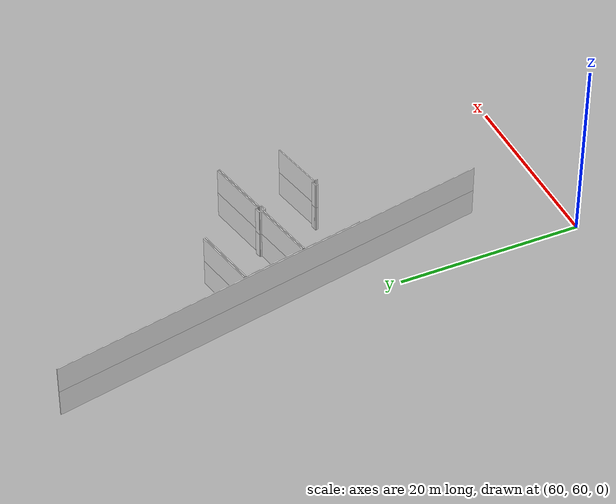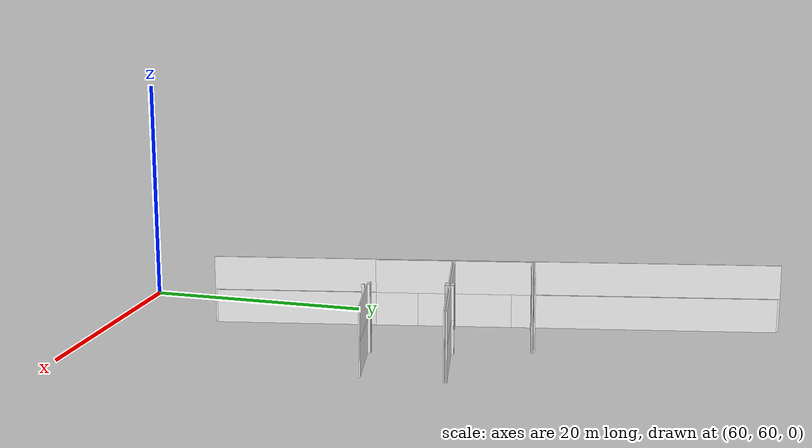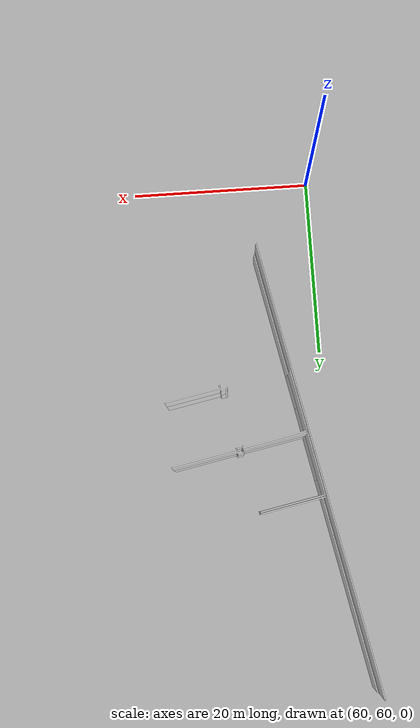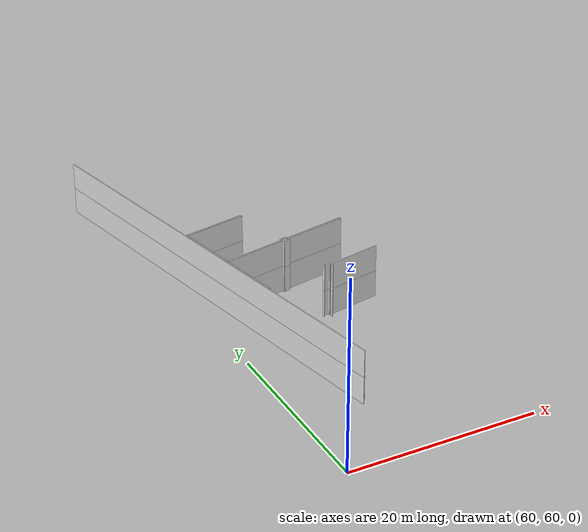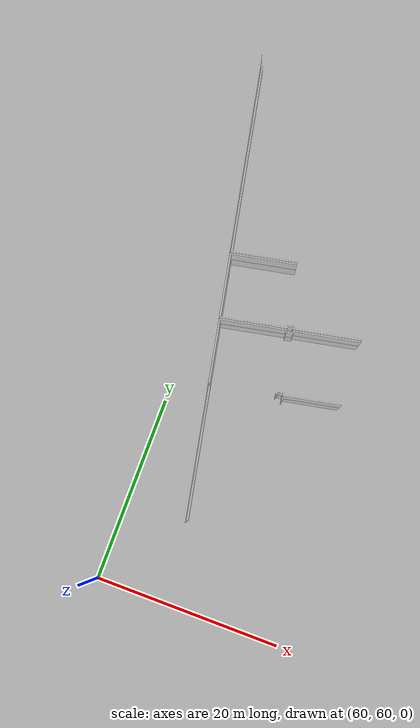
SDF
<sdf version="1.6">
 <world name="default">
  <model name="wall_64.7_97.2_1.5">
   <static>true</static>
   <pose>64.67499999998836 97.2249999998603 1.5 0 0 0.19403422798469777</pose>
   <link name="link">
    <visual name="visual">
     <geometry><box><size>7.001385577168813 0.1 3</size></box></geometry>
     <material>
      <script><uri>file://media/materials/scripts/gazebo.material</uri><name>Gazebo/White</name></script>
     </material>
    </visual>
    <collision name="collision"><geometry><box><size>7.001385577168813 0.1 3</size></box></geometry></collision>
   </link>
  </model>
  <model name="wall_64.7_97.0_1.5">
   <static>true</static>
   <pose>64.71500000002561 97.02000000001863 1.5 0 0 -2.946157326410305</pose>
   <link name="link">
    <visual name="visual">
     <geometry><box><size>7.003320641013659 0.1 3</size></box></geometry>
     <material>
      <script><uri>file://media/materials/scripts/gazebo.material</uri><name>Gazebo/White</name></script>
     </material>
    </visual>
    <collision name="collision"><geometry><box><size>7.003320641013659 0.1 3</size></box></geometry></collision>
   </link>
  </model>
  <model name="wall_61.9_93.0_1.5">
   <static>true</static>
   <pose>61.94000000000233 93.02000000001863 1.5 0 0 -1.3745595149757288</pose>
   <link name="link">
    <visual name="visual">
     <geometry><box><size>6.769933529615509 0.1 3</size></box></geometry>
     <material>
      <script><uri>file://media/materials/scripts/gazebo.material</uri><name>Gazebo/White</name></script>
     </material>
    </visual>
    <collision name="collision"><geometry><box><size>6.769933529615509 0.1 3</size></box></geometry></collision>
   </link>
  </model>
  <model name="wall_66.0_90.4_1.5">
   <static>true</static>
   <pose>66.03499999997439 90.38000000012107 1.5 0 0 0.1954353271142626</pose>
   <link name="link">
    <visual name="visual">
     <geometry><box><size>7.0033206409232305 0.1 3</size></box></geometry>
     <material>
      <script><uri>file://media/materials/scripts/gazebo.material</uri><name>Gazebo/White</name></script>
     </material>
    </visual>
    <collision name="collision"><geometry><box><size>7.0033206409232305 0.1 3</size></box></geometry></collision>
   </link>
  </model>
  <model name="wall_69.4_91.2_1.5">
   <static>true</static>
   <pose>69.44999999998254 91.17999999993481 1.5 0 0 1.7359450042881825</pose>
   <link name="link">
    <visual name="visual">
     <geometry><box><size>0.2433105009696346 0.1 3</size></box></geometry>
     <material>
      <script><uri>file://media/materials/scripts/gazebo.material</uri><name>Gazebo/White</name></script>
     </material>
    </visual>
    <collision name="collision"><geometry><box><size>0.2433105009696346 0.1 3</size></box></geometry></collision>
   </link>
  </model>
  <model name="wall_69.8_91.4_1.5">
   <static>true</static>
   <pose>69.76999999998952 91.36499999999069 1.5 0 0 0.1888971813816114</pose>
   <link name="link">
    <visual name="visual">
     <geometry><box><size>0.6923149572864328 0.1 3</size></box></geometry>
     <material>
      <script><uri>file://media/materials/scripts/gazebo.material</uri><name>Gazebo/White</name></script>
     </material>
    </visual>
    <collision name="collision"><geometry><box><size>0.6923149572864328 0.1 3</size></box></geometry></collision>
   </link>
  </model>
  <model name="wall_70.1_91.3_1.5">
   <static>true</static>
   <pose>70.13499999998021 91.31000000005588 1.5 0 0 -1.3654009378375724</pose>
   <link name="link">
    <visual name="visual">
     <geometry><box><size>0.24515301365907008 0.1 3</size></box></geometry>
     <material>
      <script><uri>file://media/materials/scripts/gazebo.material</uri><name>Gazebo/White</name></script>
     </material>
    </visual>
    <collision name="collision"><geometry><box><size>0.24515301365907008 0.1 3</size></box></geometry></collision>
   </link>
  </model>
  <model name="wall_73.6_91.9_1.5">
   <static>true</static>
   <pose>73.64499999998952 91.87999999988824 1.5 0 0 0.1954634617685791</pose>
   <link name="link">
    <visual name="visual">
     <geometry><box><size>7.105300838114702 0.1 3</size></box></geometry>
     <material>
      <script><uri>file://media/materials/scripts/gazebo.material</uri><name>Gazebo/White</name></script>
     </material>
    </visual>
    <collision name="collision"><geometry><box><size>7.105300838114702 0.1 3</size></box></geometry></collision>
   </link>
  </model>
  <model name="wall_73.7_91.7_1.5">
   <static>true</static>
   <pose>73.68499999999767 91.68000000016764 1.5 0 0 -2.946129191819623</pose>
   <link name="link">
    <visual name="visual">
     <geometry><box><size>7.105300838057603 0.1 3</size></box></geometry>
     <material>
      <script><uri>file://media/materials/scripts/gazebo.material</uri><name>Gazebo/White</name></script>
     </material>
    </visual>
    <collision name="collision"><geometry><box><size>7.105300838057603 0.1 3</size></box></geometry></collision>
   </link>
  </model>
  <model name="wall_70.2_90.9_1.5">
   <static>true</static>
   <pose>70.22500000000582 90.87000000011176 1.5 0 0 -1.3654009378375724</pose>
   <link name="link">
    <visual name="visual">
     <geometry><box><size>0.24515301365907008 0.1 3</size></box></geometry>
     <material>
      <script><uri>file://media/materials/scripts/gazebo.material</uri><name>Gazebo/White</name></script>
     </material>
    </visual>
    <collision name="collision"><geometry><box><size>0.24515301365907008 0.1 3</size></box></geometry></collision>
   </link>
  </model>
  <model name="wall_69.9_90.7_1.5">
   <static>true</static>
   <pose>69.90499999999884 90.67999999993481 1.5 0 0 -2.9414115854430696</pose>
   <link name="link">
    <visual name="visual">
     <geometry><box><size>0.7040596565914858 0.1 3</size></box></geometry>
     <material>
      <script><uri>file://media/materials/scripts/gazebo.material</uri><name>Gazebo/White</name></script>
     </material>
    </visual>
    <collision name="collision"><geometry><box><size>0.7040596565914858 0.1 3</size></box></geometry></collision>
   </link>
  </model>
  <model name="wall_69.5_90.7_1.5">
   <static>true</static>
   <pose>69.53500000000349 90.73999999999069 1.5 0 0 1.7607846144977208</pose>
   <link name="link">
    <visual name="visual">
     <geometry><box><size>0.2647640461330629 0.1 3</size></box></geometry>
     <material>
      <script><uri>file://media/materials/scripts/gazebo.material</uri><name>Gazebo/White</name></script>
     </material>
    </visual>
    <collision name="collision"><geometry><box><size>0.2647640461330629 0.1 3</size></box></geometry></collision>
   </link>
  </model>
  <model name="wall_66.1_90.2_1.5">
   <static>true</static>
   <pose>66.07500000001164 90.18500000005588 1.5 0 0 -2.94475700407996</pose>
   <link name="link">
    <visual name="visual">
     <geometry><box><size>7.005269445227802 0.1 3</size></box></geometry>
     <material>
      <script><uri>file://media/materials/scripts/gazebo.material</uri><name>Gazebo/White</name></script>
     </material>
    </visual>
    <collision name="collision"><geometry><box><size>7.005269445227802 0.1 3</size></box></geometry></collision>
   </link>
  </model>
  <model name="wall_63.3_86.2_1.5">
   <static>true</static>
   <pose>63.304999999993015 86.17999999993481 1.5 0 0 -1.3731111637194056</pose>
   <link name="link">
    <visual name="visual">
     <geometry><box><size>6.771890430420447 0.1 3</size></box></geometry>
     <material>
      <script><uri>file://media/materials/scripts/gazebo.material</uri><name>Gazebo/White</name></script>
     </material>
    </visual>
    <collision name="collision"><geometry><box><size>6.771890430420447 0.1 3</size></box></geometry></collision>
   </link>
  </model>
  <model name="wall_70.8_84.3_1.5">
   <static>true</static>
   <pose>70.81500000000233 84.34000000008382 1.5 0 0 1.7761917163720695</pose>
   <link name="link">
    <visual name="visual">
     <geometry><box><size>0.24515301321506852 0.1 3</size></box></geometry>
     <material>
      <script><uri>file://media/materials/scripts/gazebo.material</uri><name>Gazebo/White</name></script>
     </material>
    </visual>
    <collision name="collision"><geometry><box><size>0.24515301321506852 0.1 3</size></box></geometry></collision>
   </link>
  </model>
  <model name="wall_70.9_84.5_1.5">
   <static>true</static>
   <pose>70.88499999998021 84.47999999998137 1.5 0 0 0.20749622662047904</pose>
   <link name="link">
    <visual name="visual">
     <geometry><box><size>0.19416487839942884 0.1 3</size></box></geometry>
     <material>
      <script><uri>file://media/materials/scripts/gazebo.material</uri><name>Gazebo/White</name></script>
     </material>
    </visual>
    <collision name="collision"><geometry><box><size>0.19416487839942884 0.1 3</size></box></geometry></collision>
   </link>
  </model>
  <model name="wall_71.2_84.5_1.5">
   <static>true</static>
   <pose>71.22499999997672 84.5449999999255 1.5 0 0 0.18164882970920815</pose>
   <link name="link">
    <visual name="visual">
     <geometry><box><size>0.49819674824716687 0.1 3</size></box></geometry>
     <material>
      <script><uri>file://media/materials/scripts/gazebo.material</uri><name>Gazebo/White</name></script>
     </material>
    </visual>
    <collision name="collision"><geometry><box><size>0.49819674824716687 0.1 3</size></box></geometry></collision>
   </link>
  </model>
  <model name="wall_71.5_84.5_1.5">
   <static>true</static>
   <pose>71.49499999999534 84.46499999985099 1.5 0 0 -1.3734007667659154</pose>
   <link name="link">
    <visual name="visual">
     <geometry><box><size>0.2549509756887716 0.1 3</size></box></geometry>
     <material>
      <script><uri>file://media/materials/scripts/gazebo.material</uri><name>Gazebo/White</name></script>
     </material>
    </visual>
    <collision name="collision"><geometry><box><size>0.2549509756887716 0.1 3</size></box></geometry></collision>
   </link>
  </model>
  <model name="wall_74.5_84.9_1.5">
   <static>true</static>
   <pose>74.52000000001863 84.93499999982305 1.5 0 0 0.19579248330455945</pose>
   <link name="link">
    <visual name="visual">
     <geometry><box><size>6.116870114680138 0.1 3</size></box></geometry>
     <material>
      <script><uri>file://media/materials/scripts/gazebo.material</uri><name>Gazebo/White</name></script>
     </material>
    </visual>
    <collision name="collision"><geometry><box><size>6.116870114680138 0.1 3</size></box></geometry></collision>
   </link>
  </model>
  <model name="wall_71.6_84.0_1.5">
   <static>true</static>
   <pose>71.58499999999185 84.03000000002794 1.5 0 0 -1.365400937450167</pose>
   <link name="link">
    <visual name="visual">
     <geometry><box><size>0.24515301320319682 0.1 3</size></box></geometry>
     <material>
      <script><uri>file://media/materials/scripts/gazebo.material</uri><name>Gazebo/White</name></script>
     </material>
    </visual>
    <collision name="collision"><geometry><box><size>0.24515301320319682 0.1 3</size></box></geometry></collision>
   </link>
  </model>
  <model name="wall_61.7_93.1_1.5">
   <static>true</static>
   <pose>61.72499999997672 93.08999999985099 1.5 0 0 -1.3737551674021267</pose>
   <link name="link">
    <visual name="visual">
     <geometry><box><size>49.803695645859904 0.1 3</size></box></geometry>
     <material>
      <script><uri>file://media/materials/scripts/gazebo.material</uri><name>Gazebo/White</name></script>
     </material>
    </visual>
    <collision name="collision"><geometry><box><size>49.803695645859904 0.1 3</size></box></geometry></collision>
   </link>
  </model>
  <model name="wall_61.9_93.1_1.5">
   <static>true</static>
   <pose>61.920000000012806 93.125 1.5 0 0 1.767596435957684</pose>
   <link name="link">
    <visual name="visual">
     <geometry><box><size>49.4036243611494 0.1 3</size></box></geometry>
     <material>
      <script><uri>file://media/materials/scripts/gazebo.material</uri><name>Gazebo/White</name></script>
     </material>
    </visual>
    <collision name="collision"><geometry><box><size>49.4036243611494 0.1 3</size></box></geometry></collision>
   </link>
  </model>
  <model name="wall_64.7_97.2_4.5">
   <static>true</static>
   <pose>64.67499999998836 97.2249999998603 4.5 0 0 0.19403422798469777</pose>
   <link name="link">
    <visual name="visual">
     <geometry><box><size>7.001385577168813 0.1 3</size></box></geometry>
     <material>
      <script><uri>file://media/materials/scripts/gazebo.material</uri><name>Gazebo/White</name></script>
     </material>
    </visual>
    <collision name="collision"><geometry><box><size>7.001385577168813 0.1 3</size></box></geometry></collision>
   </link>
  </model>
  <model name="wall_64.7_97.0_4.5">
   <static>true</static>
   <pose>64.71500000002561 97.02000000001863 4.5 0 0 -2.946157326410305</pose>
   <link name="link">
    <visual name="visual">
     <geometry><box><size>7.003320641013659 0.1 3</size></box></geometry>
     <material>
      <script><uri>file://media/materials/scripts/gazebo.material</uri><name>Gazebo/White</name></script>
     </material>
    </visual>
    <collision name="collision"><geometry><box><size>7.003320641013659 0.1 3</size></box></geometry></collision>
   </link>
  </model>
  <model name="wall_61.9_93.0_4.5">
   <static>true</static>
   <pose>61.94000000000233 93.02000000001863 4.5 0 0 -1.3745595149757288</pose>
   <link name="link">
    <visual name="visual">
     <geometry><box><size>6.769933529615509 0.1 3</size></box></geometry>
     <material>
      <script><uri>file://media/materials/scripts/gazebo.material</uri><name>Gazebo/White</name></script>
     </material>
    </visual>
    <collision name="collision"><geometry><box><size>6.769933529615509 0.1 3</size></box></geometry></collision>
   </link>
  </model>
  <model name="wall_66.0_90.4_4.5">
   <static>true</static>
   <pose>66.03499999997439 90.38000000012107 4.5 0 0 0.1954353271142626</pose>
   <link name="link">
    <visual name="visual">
     <geometry><box><size>7.0033206409232305 0.1 3</size></box></geometry>
     <material>
      <script><uri>file://media/materials/scripts/gazebo.material</uri><name>Gazebo/White</name></script>
     </material>
    </visual>
    <collision name="collision"><geometry><box><size>7.0033206409232305 0.1 3</size></box></geometry></collision>
   </link>
  </model>
  <model name="wall_69.4_91.2_4.5">
   <static>true</static>
   <pose>69.44999999998254 91.17999999993481 4.5 0 0 1.7359450042881825</pose>
   <link name="link">
    <visual name="visual">
     <geometry><box><size>0.2433105009696346 0.1 3</size></box></geometry>
     <material>
      <script><uri>file://media/materials/scripts/gazebo.material</uri><name>Gazebo/White</name></script>
     </material>
    </visual>
    <collision name="collision"><geometry><box><size>0.2433105009696346 0.1 3</size></box></geometry></collision>
   </link>
  </model>
  <model name="wall_69.8_91.4_4.5">
   <static>true</static>
   <pose>69.76999999998952 91.36499999999069 4.5 0 0 0.1888971813816114</pose>
   <link name="link">
    <visual name="visual">
     <geometry><box><size>0.6923149572864328 0.1 3</size></box></geometry>
     <material>
      <script><uri>file://media/materials/scripts/gazebo.material</uri><name>Gazebo/White</name></script>
     </material>
    </visual>
    <collision name="collision"><geometry><box><size>0.6923149572864328 0.1 3</size></box></geometry></collision>
   </link>
  </model>
  <model name="wall_70.1_91.3_4.5">
   <static>true</static>
   <pose>70.13499999998021 91.31000000005588 4.5 0 0 -1.3654009378375724</pose>
   <link name="link">
    <visual name="visual">
     <geometry><box><size>0.24515301365907008 0.1 3</size></box></geometry>
     <material>
      <script><uri>file://media/materials/scripts/gazebo.material</uri><name>Gazebo/White</name></script>
     </material>
    </visual>
    <collision name="collision"><geometry><box><size>0.24515301365907008 0.1 3</size></box></geometry></collision>
   </link>
  </model>
  <model name="wall_73.6_91.9_4.5">
   <static>true</static>
   <pose>73.64499999998952 91.87999999988824 4.5 0 0 0.1954634617685791</pose>
   <link name="link">
    <visual name="visual">
     <geometry><box><size>7.105300838114702 0.1 3</size></box></geometry>
     <material>
      <script><uri>file://media/materials/scripts/gazebo.material</uri><name>Gazebo/White</name></script>
     </material>
    </visual>
    <collision name="collision"><geometry><box><size>7.105300838114702 0.1 3</size></box></geometry></collision>
   </link>
  </model>
  <model name="wall_73.7_91.7_4.5">
   <static>true</static>
   <pose>73.68499999999767 91.68000000016764 4.5 0 0 -2.946129191819623</pose>
   <link name="link">
    <visual name="visual">
     <geometry><box><size>7.105300838057603 0.1 3</size></box></geometry>
     <material>
      <script><uri>file://media/materials/scripts/gazebo.material</uri><name>Gazebo/White</name></script>
     </material>
    </visual>
    <collision name="collision"><geometry><box><size>7.105300838057603 0.1 3</size></box></geometry></collision>
   </link>
  </model>
  <model name="wall_70.2_90.9_4.5">
   <static>true</static>
   <pose>70.22500000000582 90.87000000011176 4.5 0 0 -1.3654009378375724</pose>
   <link name="link">
    <visual name="visual">
     <geometry><box><size>0.24515301365907008 0.1 3</size></box></geometry>
     <material>
      <script><uri>file://media/materials/scripts/gazebo.material</uri><name>Gazebo/White</name></script>
     </material>
    </visual>
    <collision name="collision"><geometry><box><size>0.24515301365907008 0.1 3</size></box></geometry></collision>
   </link>
  </model>
  <model name="wall_69.9_90.7_4.5">
   <static>true</static>
   <pose>69.90499999999884 90.67999999993481 4.5 0 0 -2.9414115854430696</pose>
   <link name="link">
    <visual name="visual">
     <geometry><box><size>0.7040596565914858 0.1 3</size></box></geometry>
     <material>
      <script><uri>file://media/materials/scripts/gazebo.material</uri><name>Gazebo/White</name></script>
     </material>
    </visual>
    <collision name="collision"><geometry><box><size>0.7040596565914858 0.1 3</size></box></geometry></collision>
   </link>
  </model>
  <model name="wall_69.5_90.7_4.5">
   <static>true</static>
   <pose>69.53500000000349 90.73999999999069 4.5 0 0 1.7607846144977208</pose>
   <link name="link">
    <visual name="visual">
     <geometry><box><size>0.2647640461330629 0.1 3</size></box></geometry>
     <material>
      <script><uri>file://media/materials/scripts/gazebo.material</uri><name>Gazebo/White</name></script>
     </material>
    </visual>
    <collision name="collision"><geometry><box><size>0.2647640461330629 0.1 3</size></box></geometry></collision>
   </link>
  </model>
  <model name="wall_66.1_90.2_4.5">
   <static>true</static>
   <pose>66.07500000001164 90.18500000005588 4.5 0 0 -2.94475700407996</pose>
   <link name="link">
    <visual name="visual">
     <geometry><box><size>7.005269445227802 0.1 3</size></box></geometry>
     <material>
      <script><uri>file://media/materials/scripts/gazebo.material</uri><name>Gazebo/White</name></script>
     </material>
    </visual>
    <collision name="collision"><geometry><box><size>7.005269445227802 0.1 3</size></box></geometry></collision>
   </link>
  </model>
  <model name="wall_63.3_86.2_4.5">
   <static>true</static>
   <pose>63.304999999993015 86.17999999993481 4.5 0 0 -1.3731111637194056</pose>
   <link name="link">
    <visual name="visual">
     <geometry><box><size>6.771890430420447 0.1 3</size></box></geometry>
     <material>
      <script><uri>file://media/materials/scripts/gazebo.material</uri><name>Gazebo/White</name></script>
     </material>
    </visual>
    <collision name="collision"><geometry><box><size>6.771890430420447 0.1 3</size></box></geometry></collision>
   </link>
  </model>
  <model name="wall_70.8_84.3_4.5">
   <static>true</static>
   <pose>70.81500000000233 84.34000000008382 4.5 0 0 1.7761917163720695</pose>
   <link name="link">
    <visual name="visual">
     <geometry><box><size>0.24515301321506852 0.1 3</size></box></geometry>
     <material>
      <script><uri>file://media/materials/scripts/gazebo.material</uri><name>Gazebo/White</name></script>
     </material>
    </visual>
    <collision name="collision"><geometry><box><size>0.24515301321506852 0.1 3</size></box></geometry></collision>
   </link>
  </model>
  <model name="wall_70.9_84.5_4.5">
   <static>true</static>
   <pose>70.88499999998021 84.47999999998137 4.5 0 0 0.20749622662047904</pose>
   <link name="link">
    <visual name="visual">
     <geometry><box><size>0.19416487839942884 0.1 3</size></box></geometry>
     <material>
      <script><uri>file://media/materials/scripts/gazebo.material</uri><name>Gazebo/White</name></script>
     </material>
    </visual>
    <collision name="collision"><geometry><box><size>0.19416487839942884 0.1 3</size></box></geometry></collision>
   </link>
  </model>
  <model name="wall_71.2_84.5_4.5">
   <static>true</static>
   <pose>71.22499999997672 84.5449999999255 4.5 0 0 0.18164882970920815</pose>
   <link name="link">
    <visual name="visual">
     <geometry><box><size>0.49819674824716687 0.1 3</size></box></geometry>
     <material>
      <script><uri>file://media/materials/scripts/gazebo.material</uri><name>Gazebo/White</name></script>
     </material>
    </visual>
    <collision name="collision"><geometry><box><size>0.49819674824716687 0.1 3</size></box></geometry></collision>
   </link>
  </model>
  <model name="wall_71.5_84.5_4.5">
   <static>true</static>
   <pose>71.49499999999534 84.46499999985099 4.5 0 0 -1.3734007667659154</pose>
   <link name="link">
    <visual name="visual">
     <geometry><box><size>0.2549509756887716 0.1 3</size></box></geometry>
     <material>
      <script><uri>file://media/materials/scripts/gazebo.material</uri><name>Gazebo/White</name></script>
     </material>
    </visual>
    <collision name="collision"><geometry><box><size>0.2549509756887716 0.1 3</size></box></geometry></collision>
   </link>
  </model>
  <model name="wall_74.5_84.9_4.5">
   <static>true</static>
   <pose>74.52000000001863 84.93499999982305 4.5 0 0 0.19579248330455945</pose>
   <link name="link">
    <visual name="visual">
     <geometry><box><size>6.116870114680138 0.1 3</size></box></geometry>
     <material>
      <script><uri>file://media/materials/scripts/gazebo.material</uri><name>Gazebo/White</name></script>
     </material>
    </visual>
    <collision name="collision"><geometry><box><size>6.116870114680138 0.1 3</size></box></geometry></collision>
   </link>
  </model>
  <model name="wall_71.6_84.0_4.5">
   <static>true</static>
   <pose>71.58499999999185 84.03000000002794 4.5 0 0 -1.365400937450167</pose>
   <link name="link">
    <visual name="visual">
     <geometry><box><size>0.24515301320319682 0.1 3</size></box></geometry>
     <material>
      <script><uri>file://media/materials/scripts/gazebo.material</uri><name>Gazebo/White</name></script>
     </material>
    </visual>
    <collision name="collision"><geometry><box><size>0.24515301320319682 0.1 3</size></box></geometry></collision>
   </link>
  </model>
  <model name="wall_61.7_93.1_4.5">
   <static>true</static>
   <pose>61.72499999997672 93.08999999985099 4.5 0 0 -1.3737551674021267</pose>
   <link name="link">
    <visual name="visual">
     <geometry><box><size>49.803695645859904 0.1 3</size></box></geometry>
     <material>
      <script><uri>file://media/materials/scripts/gazebo.material</uri><name>Gazebo/White</name></script>
     </material>
    </visual>
    <collision name="collision"><geometry><box><size>49.803695645859904 0.1 3</size></box></geometry></collision>
   </link>
  </model>
 </world>
</sdf>
